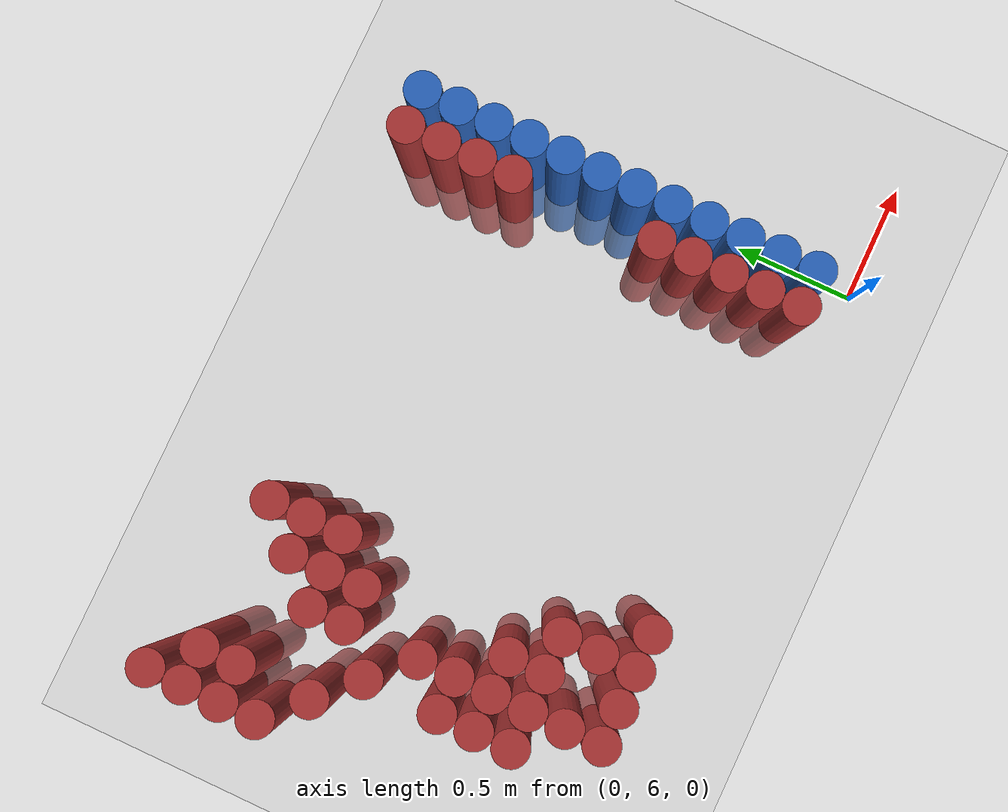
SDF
<sdf version="1.6">
 <world name="default">
  <model name="ground_plane">
   <static>1</static>
   <link name="link">
    <collision name="collision">
     <geometry><plane><normal>0 0 1</normal><size>100 100</size></plane></geometry>
     <surface><friction><ode><mu>100</mu><mu2>50</mu2></ode></friction></surface>
    </collision>
    <visual name="visual">
     <cast_shadows>0</cast_shadows>
     <geometry><plane><normal>0 0 1</normal><size>100 100</size></plane></geometry>
     <material>
      <script><uri>file://media/materials/scripts/gazebo.material</uri><name>Gazebo/Grey</name></script>
     </material>
    </visual>
   </link>
  </model>
  <model name="unit_cylinder_240">
   <static>1</static>
   <pose>-2.475000 7.425000 0.000000 0.000000 0.000000 0.000000</pose>
   <link name="link">
    <inertial>
     <mass>1</mass>
     <inertia><ixx>0.145833</ixx><ixy>0</ixy><ixz>0</ixz><iyy>0.145833</iyy><iyz>0</iyz><izz>0.125</izz></inertia>
    </inertial>
    <collision name="collision">
     <geometry><cylinder><radius>0.075000</radius><length>1</length></cylinder></geometry>
    </collision>
    <visual name="visual">
     <geometry><cylinder><radius>0.075000</radius><length>1</length></cylinder></geometry>
     <material>
      <ambient>0.648000 0.192000 0.192000 1</ambient>
      <diffuse>0.648000 0.192000 0.192000 1</diffuse>
     </material>
     <material>
      <script><name>Gazebo/Grey</name><uri>file://media/materials/scripts/gazebo.material</uri></script>
     </material>
    </visual>
   </link>
  </model>
  <model name="unit_cylinder_241">
   <static>1</static>
   <pose>-2.475000 7.575000 0.000000 0.000000 0.000000 0.000000</pose>
   <link name="link">
    <inertial>
     <mass>1</mass>
     <inertia><ixx>0.145833</ixx><ixy>0</ixy><ixz>0</ixz><iyy>0.145833</iyy><iyz>0</iyz><izz>0.125</izz></inertia>
    </inertial>
    <collision name="collision">
     <geometry><cylinder><radius>0.075000</radius><length>1</length></cylinder></geometry>
    </collision>
    <visual name="visual">
     <geometry><cylinder><radius>0.075000</radius><length>1</length></cylinder></geometry>
     <material>
      <ambient>0.648000 0.192000 0.192000 1</ambient>
      <diffuse>0.648000 0.192000 0.192000 1</diffuse>
     </material>
     <material>
      <script><name>Gazebo/Grey</name><uri>file://media/materials/scripts/gazebo.material</uri></script>
     </material>
    </visual>
   </link>
  </model>
  <model name="unit_cylinder_242">
   <static>1</static>
   <pose>-2.475000 7.725000 0.000000 0.000000 0.000000 0.000000</pose>
   <link name="link">
    <inertial>
     <mass>1</mass>
     <inertia><ixx>0.145833</ixx><ixy>0</ixy><ixz>0</ixz><iyy>0.145833</iyy><iyz>0</iyz><izz>0.125</izz></inertia>
    </inertial>
    <collision name="collision">
     <geometry><cylinder><radius>0.075000</radius><length>1</length></cylinder></geometry>
    </collision>
    <visual name="visual">
     <geometry><cylinder><radius>0.075000</radius><length>1</length></cylinder></geometry>
     <material>
      <ambient>0.648000 0.192000 0.192000 1</ambient>
      <diffuse>0.648000 0.192000 0.192000 1</diffuse>
     </material>
     <material>
      <script><name>Gazebo/Grey</name><uri>file://media/materials/scripts/gazebo.material</uri></script>
     </material>
    </visual>
   </link>
  </model>
  <model name="unit_cylinder_243">
   <static>1</static>
   <pose>-2.475000 7.875000 0.000000 0.000000 0.000000 0.000000</pose>
   <link name="link">
    <inertial>
     <mass>1</mass>
     <inertia><ixx>0.145833</ixx><ixy>0</ixy><ixz>0</ixz><iyy>0.145833</iyy><iyz>0</iyz><izz>0.125</izz></inertia>
    </inertial>
    <collision name="collision">
     <geometry><cylinder><radius>0.075000</radius><length>1</length></cylinder></geometry>
    </collision>
    <visual name="visual">
     <geometry><cylinder><radius>0.075000</radius><length>1</length></cylinder></geometry>
     <material>
      <ambient>0.648000 0.192000 0.192000 1</ambient>
      <diffuse>0.648000 0.192000 0.192000 1</diffuse>
     </material>
     <material>
      <script><name>Gazebo/Grey</name><uri>file://media/materials/scripts/gazebo.material</uri></script>
     </material>
    </visual>
   </link>
  </model>
  <model name="unit_cylinder_254">
   <static>1</static>
   <pose>-2.325000 7.275000 0.000000 0.000000 0.000000 0.000000</pose>
   <link name="link">
    <inertial>
     <mass>1</mass>
     <inertia><ixx>0.145833</ixx><ixy>0</ixy><ixz>0</ixz><iyy>0.145833</iyy><iyz>0</iyz><izz>0.125</izz></inertia>
    </inertial>
    <collision name="collision">
     <geometry><cylinder><radius>0.075000</radius><length>1</length></cylinder></geometry>
    </collision>
    <visual name="visual">
     <geometry><cylinder><radius>0.075000</radius><length>1</length></cylinder></geometry>
     <material>
      <ambient>0.648000 0.192000 0.192000 1</ambient>
      <diffuse>0.648000 0.192000 0.192000 1</diffuse>
     </material>
     <material>
      <script><name>Gazebo/Grey</name><uri>file://media/materials/scripts/gazebo.material</uri></script>
     </material>
    </visual>
   </link>
  </model>
  <model name="unit_cylinder_255">
   <static>1</static>
   <pose>-2.325000 7.575000 0.000000 0.000000 0.000000 0.000000</pose>
   <link name="link">
    <inertial>
     <mass>1</mass>
     <inertia><ixx>0.145833</ixx><ixy>0</ixy><ixz>0</ixz><iyy>0.145833</iyy><iyz>0</iyz><izz>0.125</izz></inertia>
    </inertial>
    <collision name="collision">
     <geometry><cylinder><radius>0.075000</radius><length>1</length></cylinder></geometry>
    </collision>
    <visual name="visual">
     <geometry><cylinder><radius>0.075000</radius><length>1</length></cylinder></geometry>
     <material>
      <ambient>0.648000 0.192000 0.192000 1</ambient>
      <diffuse>0.648000 0.192000 0.192000 1</diffuse>
     </material>
     <material>
      <script><name>Gazebo/Grey</name><uri>file://media/materials/scripts/gazebo.material</uri></script>
     </material>
    </visual>
   </link>
  </model>
  <model name="unit_cylinder_256">
   <static>1</static>
   <pose>-2.325000 7.725000 0.000000 0.000000 0.000000 0.000000</pose>
   <link name="link">
    <inertial>
     <mass>1</mass>
     <inertia><ixx>0.145833</ixx><ixy>0</ixy><ixz>0</ixz><iyy>0.145833</iyy><iyz>0</iyz><izz>0.125</izz></inertia>
    </inertial>
    <collision name="collision">
     <geometry><cylinder><radius>0.075000</radius><length>1</length></cylinder></geometry>
    </collision>
    <visual name="visual">
     <geometry><cylinder><radius>0.075000</radius><length>1</length></cylinder></geometry>
     <material>
      <ambient>0.648000 0.192000 0.192000 1</ambient>
      <diffuse>0.648000 0.192000 0.192000 1</diffuse>
     </material>
     <material>
      <script><name>Gazebo/Grey</name><uri>file://media/materials/scripts/gazebo.material</uri></script>
     </material>
    </visual>
   </link>
  </model>
  <model name="unit_cylinder_261">
   <static>1</static>
   <pose>-2.175000 6.525000 0.000000 0.000000 0.000000 0.000000</pose>
   <link name="link">
    <inertial>
     <mass>1</mass>
     <inertia><ixx>0.145833</ixx><ixy>0</ixy><ixz>0</ixz><iyy>0.145833</iyy><iyz>0</iyz><izz>0.125</izz></inertia>
    </inertial>
    <collision name="collision">
     <geometry><cylinder><radius>0.075000</radius><length>1</length></cylinder></geometry>
    </collision>
    <visual name="visual">
     <geometry><cylinder><radius>0.075000</radius><length>1</length></cylinder></geometry>
     <material>
      <ambient>0.648000 0.192000 0.192000 1</ambient>
      <diffuse>0.648000 0.192000 0.192000 1</diffuse>
     </material>
     <material>
      <script><name>Gazebo/Grey</name><uri>file://media/materials/scripts/gazebo.material</uri></script>
     </material>
    </visual>
   </link>
  </model>
  <model name="unit_cylinder_262">
   <static>1</static>
   <pose>-2.175000 6.675000 0.000000 0.000000 0.000000 0.000000</pose>
   <link name="link">
    <inertial>
     <mass>1</mass>
     <inertia><ixx>0.145833</ixx><ixy>0</ixy><ixz>0</ixz><iyy>0.145833</iyy><iyz>0</iyz><izz>0.125</izz></inertia>
    </inertial>
    <collision name="collision">
     <geometry><cylinder><radius>0.075000</radius><length>1</length></cylinder></geometry>
    </collision>
    <visual name="visual">
     <geometry><cylinder><radius>0.075000</radius><length>1</length></cylinder></geometry>
     <material>
      <ambient>0.648000 0.192000 0.192000 1</ambient>
      <diffuse>0.648000 0.192000 0.192000 1</diffuse>
     </material>
     <material>
      <script><name>Gazebo/Grey</name><uri>file://media/materials/scripts/gazebo.material</uri></script>
     </material>
    </visual>
   </link>
  </model>
  <model name="unit_cylinder_263">
   <static>1</static>
   <pose>-2.175000 6.825000 0.000000 0.000000 0.000000 0.000000</pose>
   <link name="link">
    <inertial>
     <mass>1</mass>
     <inertia><ixx>0.145833</ixx><ixy>0</ixy><ixz>0</ixz><iyy>0.145833</iyy><iyz>0</iyz><izz>0.125</izz></inertia>
    </inertial>
    <collision name="collision">
     <geometry><cylinder><radius>0.075000</radius><length>1</length></cylinder></geometry>
    </collision>
    <visual name="visual">
     <geometry><cylinder><radius>0.075000</radius><length>1</length></cylinder></geometry>
     <material>
      <ambient>0.648000 0.192000 0.192000 1</ambient>
      <diffuse>0.648000 0.192000 0.192000 1</diffuse>
     </material>
     <material>
      <script><name>Gazebo/Grey</name><uri>file://media/materials/scripts/gazebo.material</uri></script>
     </material>
    </visual>
   </link>
  </model>
  <model name="unit_cylinder_264">
   <static>1</static>
   <pose>-2.175000 7.125000 0.000000 0.000000 0.000000 0.000000</pose>
   <link name="link">
    <inertial>
     <mass>1</mass>
     <inertia><ixx>0.145833</ixx><ixy>0</ixy><ixz>0</ixz><iyy>0.145833</iyy><iyz>0</iyz><izz>0.125</izz></inertia>
    </inertial>
    <collision name="collision">
     <geometry><cylinder><radius>0.075000</radius><length>1</length></cylinder></geometry>
    </collision>
    <visual name="visual">
     <geometry><cylinder><radius>0.075000</radius><length>1</length></cylinder></geometry>
     <material>
      <ambient>0.648000 0.192000 0.192000 1</ambient>
      <diffuse>0.648000 0.192000 0.192000 1</diffuse>
     </material>
     <material>
      <script><name>Gazebo/Grey</name><uri>file://media/materials/scripts/gazebo.material</uri></script>
     </material>
    </visual>
   </link>
  </model>
  <model name="unit_cylinder_267">
   <static>1</static>
   <pose>-2.025000 6.225000 0.000000 0.000000 0.000000 0.000000</pose>
   <link name="link">
    <inertial>
     <mass>1</mass>
     <inertia><ixx>0.145833</ixx><ixy>0</ixy><ixz>0</ixz><iyy>0.145833</iyy><iyz>0</iyz><izz>0.125</izz></inertia>
    </inertial>
    <collision name="collision">
     <geometry><cylinder><radius>0.075000</radius><length>1</length></cylinder></geometry>
    </collision>
    <visual name="visual">
     <geometry><cylinder><radius>0.075000</radius><length>1</length></cylinder></geometry>
     <material>
      <ambient>0.648000 0.192000 0.192000 1</ambient>
      <diffuse>0.648000 0.192000 0.192000 1</diffuse>
     </material>
     <material>
      <script><name>Gazebo/Grey</name><uri>file://media/materials/scripts/gazebo.material</uri></script>
     </material>
    </visual>
   </link>
  </model>
  <model name="unit_cylinder_268">
   <static>1</static>
   <pose>-2.025000 6.375000 0.000000 0.000000 0.000000 0.000000</pose>
   <link name="link">
    <inertial>
     <mass>1</mass>
     <inertia><ixx>0.145833</ixx><ixy>0</ixy><ixz>0</ixz><iyy>0.145833</iyy><iyz>0</iyz><izz>0.125</izz></inertia>
    </inertial>
    <collision name="collision">
     <geometry><cylinder><radius>0.075000</radius><length>1</length></cylinder></geometry>
    </collision>
    <visual name="visual">
     <geometry><cylinder><radius>0.075000</radius><length>1</length></cylinder></geometry>
     <material>
      <ambient>0.648000 0.192000 0.192000 1</ambient>
      <diffuse>0.648000 0.192000 0.192000 1</diffuse>
     </material>
     <material>
      <script><name>Gazebo/Grey</name><uri>file://media/materials/scripts/gazebo.material</uri></script>
     </material>
    </visual>
   </link>
  </model>
  <model name="unit_cylinder_269">
   <static>1</static>
   <pose>-2.025000 6.525000 0.000000 0.000000 0.000000 0.000000</pose>
   <link name="link">
    <inertial>
     <mass>1</mass>
     <inertia><ixx>0.145833</ixx><ixy>0</ixy><ixz>0</ixz><iyy>0.145833</iyy><iyz>0</iyz><izz>0.125</izz></inertia>
    </inertial>
    <collision name="collision">
     <geometry><cylinder><radius>0.075000</radius><length>1</length></cylinder></geometry>
    </collision>
    <visual name="visual">
     <geometry><cylinder><radius>0.075000</radius><length>1</length></cylinder></geometry>
     <material>
      <ambient>0.648000 0.192000 0.192000 1</ambient>
      <diffuse>0.648000 0.192000 0.192000 1</diffuse>
     </material>
     <material>
      <script><name>Gazebo/Grey</name><uri>file://media/materials/scripts/gazebo.material</uri></script>
     </material>
    </visual>
   </link>
  </model>
  <model name="unit_cylinder_270">
   <static>1</static>
   <pose>-2.025000 6.675000 0.000000 0.000000 0.000000 0.000000</pose>
   <link name="link">
    <inertial>
     <mass>1</mass>
     <inertia><ixx>0.145833</ixx><ixy>0</ixy><ixz>0</ixz><iyy>0.145833</iyy><iyz>0</iyz><izz>0.125</izz></inertia>
    </inertial>
    <collision name="collision">
     <geometry><cylinder><radius>0.075000</radius><length>1</length></cylinder></geometry>
    </collision>
    <visual name="visual">
     <geometry><cylinder><radius>0.075000</radius><length>1</length></cylinder></geometry>
     <material>
      <ambient>0.648000 0.192000 0.192000 1</ambient>
      <diffuse>0.648000 0.192000 0.192000 1</diffuse>
     </material>
     <material>
      <script><name>Gazebo/Grey</name><uri>file://media/materials/scripts/gazebo.material</uri></script>
     </material>
    </visual>
   </link>
  </model>
  <model name="unit_cylinder_271">
   <static>1</static>
   <pose>-2.025000 6.825000 0.000000 0.000000 0.000000 0.000000</pose>
   <link name="link">
    <inertial>
     <mass>1</mass>
     <inertia><ixx>0.145833</ixx><ixy>0</ixy><ixz>0</ixz><iyy>0.145833</iyy><iyz>0</iyz><izz>0.125</izz></inertia>
    </inertial>
    <collision name="collision">
     <geometry><cylinder><radius>0.075000</radius><length>1</length></cylinder></geometry>
    </collision>
    <visual name="visual">
     <geometry><cylinder><radius>0.075000</radius><length>1</length></cylinder></geometry>
     <material>
      <ambient>0.648000 0.192000 0.192000 1</ambient>
      <diffuse>0.648000 0.192000 0.192000 1</diffuse>
     </material>
     <material>
      <script><name>Gazebo/Grey</name><uri>file://media/materials/scripts/gazebo.material</uri></script>
     </material>
    </visual>
   </link>
  </model>
  <model name="unit_cylinder_272">
   <static>1</static>
   <pose>-2.025000 6.975000 0.000000 0.000000 0.000000 0.000000</pose>
   <link name="link">
    <inertial>
     <mass>1</mass>
     <inertia><ixx>0.145833</ixx><ixy>0</ixy><ixz>0</ixz><iyy>0.145833</iyy><iyz>0</iyz><izz>0.125</izz></inertia>
    </inertial>
    <collision name="collision">
     <geometry><cylinder><radius>0.075000</radius><length>1</length></cylinder></geometry>
    </collision>
    <visual name="visual">
     <geometry><cylinder><radius>0.075000</radius><length>1</length></cylinder></geometry>
     <material>
      <ambient>0.648000 0.192000 0.192000 1</ambient>
      <diffuse>0.648000 0.192000 0.192000 1</diffuse>
     </material>
     <material>
      <script><name>Gazebo/Grey</name><uri>file://media/materials/scripts/gazebo.material</uri></script>
     </material>
    </visual>
   </link>
  </model>
  <model name="unit_cylinder_273">
   <static>1</static>
   <pose>-2.025000 7.275000 0.000000 0.000000 0.000000 0.000000</pose>
   <link name="link">
    <inertial>
     <mass>1</mass>
     <inertia><ixx>0.145833</ixx><ixy>0</ixy><ixz>0</ixz><iyy>0.145833</iyy><iyz>0</iyz><izz>0.125</izz></inertia>
    </inertial>
    <collision name="collision">
     <geometry><cylinder><radius>0.075000</radius><length>1</length></cylinder></geometry>
    </collision>
    <visual name="visual">
     <geometry><cylinder><radius>0.075000</radius><length>1</length></cylinder></geometry>
     <material>
      <ambient>0.648000 0.192000 0.192000 1</ambient>
      <diffuse>0.648000 0.192000 0.192000 1</diffuse>
     </material>
     <material>
      <script><name>Gazebo/Grey</name><uri>file://media/materials/scripts/gazebo.material</uri></script>
     </material>
    </visual>
   </link>
  </model>
  <model name="unit_cylinder_274">
   <static>1</static>
   <pose>-2.025000 7.425000 0.000000 0.000000 0.000000 0.000000</pose>
   <link name="link">
    <inertial>
     <mass>1</mass>
     <inertia><ixx>0.145833</ixx><ixy>0</ixy><ixz>0</ixz><iyy>0.145833</iyy><iyz>0</iyz><izz>0.125</izz></inertia>
    </inertial>
    <collision name="collision">
     <geometry><cylinder><radius>0.075000</radius><length>1</length></cylinder></geometry>
    </collision>
    <visual name="visual">
     <geometry><cylinder><radius>0.075000</radius><length>1</length></cylinder></geometry>
     <material>
      <ambient>0.648000 0.192000 0.192000 1</ambient>
      <diffuse>0.648000 0.192000 0.192000 1</diffuse>
     </material>
     <material>
      <script><name>Gazebo/Grey</name><uri>file://media/materials/scripts/gazebo.material</uri></script>
     </material>
    </visual>
   </link>
  </model>
  <model name="unit_cylinder_280">
   <static>1</static>
   <pose>-1.875000 6.225000 0.000000 0.000000 0.000000 0.000000</pose>
   <link name="link">
    <inertial>
     <mass>1</mass>
     <inertia><ixx>0.145833</ixx><ixy>0</ixy><ixz>0</ixz><iyy>0.145833</iyy><iyz>0</iyz><izz>0.125</izz></inertia>
    </inertial>
    <collision name="collision">
     <geometry><cylinder><radius>0.075000</radius><length>1</length></cylinder></geometry>
    </collision>
    <visual name="visual">
     <geometry><cylinder><radius>0.075000</radius><length>1</length></cylinder></geometry>
     <material>
      <ambient>0.648000 0.192000 0.192000 1</ambient>
      <diffuse>0.648000 0.192000 0.192000 1</diffuse>
     </material>
     <material>
      <script><name>Gazebo/Grey</name><uri>file://media/materials/scripts/gazebo.material</uri></script>
     </material>
    </visual>
   </link>
  </model>
  <model name="unit_cylinder_281">
   <static>1</static>
   <pose>-1.875000 6.525000 0.000000 0.000000 0.000000 0.000000</pose>
   <link name="link">
    <inertial>
     <mass>1</mass>
     <inertia><ixx>0.145833</ixx><ixy>0</ixy><ixz>0</ixz><iyy>0.145833</iyy><iyz>0</iyz><izz>0.125</izz></inertia>
    </inertial>
    <collision name="collision">
     <geometry><cylinder><radius>0.075000</radius><length>1</length></cylinder></geometry>
    </collision>
    <visual name="visual">
     <geometry><cylinder><radius>0.075000</radius><length>1</length></cylinder></geometry>
     <material>
      <ambient>0.648000 0.192000 0.192000 1</ambient>
      <diffuse>0.648000 0.192000 0.192000 1</diffuse>
     </material>
     <material>
      <script><name>Gazebo/Grey</name><uri>file://media/materials/scripts/gazebo.material</uri></script>
     </material>
    </visual>
   </link>
  </model>
  <model name="unit_cylinder_282">
   <static>1</static>
   <pose>-1.875000 6.675000 0.000000 0.000000 0.000000 0.000000</pose>
   <link name="link">
    <inertial>
     <mass>1</mass>
     <inertia><ixx>0.145833</ixx><ixy>0</ixy><ixz>0</ixz><iyy>0.145833</iyy><iyz>0</iyz><izz>0.125</izz></inertia>
    </inertial>
    <collision name="collision">
     <geometry><cylinder><radius>0.075000</radius><length>1</length></cylinder></geometry>
    </collision>
    <visual name="visual">
     <geometry><cylinder><radius>0.075000</radius><length>1</length></cylinder></geometry>
     <material>
      <ambient>0.648000 0.192000 0.192000 1</ambient>
      <diffuse>0.648000 0.192000 0.192000 1</diffuse>
     </material>
     <material>
      <script><name>Gazebo/Grey</name><uri>file://media/materials/scripts/gazebo.material</uri></script>
     </material>
    </visual>
   </link>
  </model>
  <model name="unit_cylinder_283">
   <static>1</static>
   <pose>-1.875000 7.275000 0.000000 0.000000 0.000000 0.000000</pose>
   <link name="link">
    <inertial>
     <mass>1</mass>
     <inertia><ixx>0.145833</ixx><ixy>0</ixy><ixz>0</ixz><iyy>0.145833</iyy><iyz>0</iyz><izz>0.125</izz></inertia>
    </inertial>
    <collision name="collision">
     <geometry><cylinder><radius>0.075000</radius><length>1</length></cylinder></geometry>
    </collision>
    <visual name="visual">
     <geometry><cylinder><radius>0.075000</radius><length>1</length></cylinder></geometry>
     <material>
      <ambient>0.648000 0.192000 0.192000 1</ambient>
      <diffuse>0.648000 0.192000 0.192000 1</diffuse>
     </material>
     <material>
      <script><name>Gazebo/Grey</name><uri>file://media/materials/scripts/gazebo.material</uri></script>
     </material>
    </visual>
   </link>
  </model>
  <model name="unit_cylinder_284">
   <static>1</static>
   <pose>-1.875000 7.425000 0.000000 0.000000 0.000000 0.000000</pose>
   <link name="link">
    <inertial>
     <mass>1</mass>
     <inertia><ixx>0.145833</ixx><ixy>0</ixy><ixz>0</ixz><iyy>0.145833</iyy><iyz>0</iyz><izz>0.125</izz></inertia>
    </inertial>
    <collision name="collision">
     <geometry><cylinder><radius>0.075000</radius><length>1</length></cylinder></geometry>
    </collision>
    <visual name="visual">
     <geometry><cylinder><radius>0.075000</radius><length>1</length></cylinder></geometry>
     <material>
      <ambient>0.648000 0.192000 0.192000 1</ambient>
      <diffuse>0.648000 0.192000 0.192000 1</diffuse>
     </material>
     <material>
      <script><name>Gazebo/Grey</name><uri>file://media/materials/scripts/gazebo.material</uri></script>
     </material>
    </visual>
   </link>
  </model>
  <model name="unit_cylinder_285">
   <static>1</static>
   <pose>-1.875000 7.575000 0.000000 0.000000 0.000000 0.000000</pose>
   <link name="link">
    <inertial>
     <mass>1</mass>
     <inertia><ixx>0.145833</ixx><ixy>0</ixy><ixz>0</ixz><iyy>0.145833</iyy><iyz>0</iyz><izz>0.125</izz></inertia>
    </inertial>
    <collision name="collision">
     <geometry><cylinder><radius>0.075000</radius><length>1</length></cylinder></geometry>
    </collision>
    <visual name="visual">
     <geometry><cylinder><radius>0.075000</radius><length>1</length></cylinder></geometry>
     <material>
      <ambient>0.648000 0.192000 0.192000 1</ambient>
      <diffuse>0.648000 0.192000 0.192000 1</diffuse>
     </material>
     <material>
      <script><name>Gazebo/Grey</name><uri>file://media/materials/scripts/gazebo.material</uri></script>
     </material>
    </visual>
   </link>
  </model>
  <model name="unit_cylinder_289">
   <static>1</static>
   <pose>-1.725000 6.225000 0.000000 0.000000 0.000000 0.000000</pose>
   <link name="link">
    <inertial>
     <mass>1</mass>
     <inertia><ixx>0.145833</ixx><ixy>0</ixy><ixz>0</ixz><iyy>0.145833</iyy><iyz>0</iyz><izz>0.125</izz></inertia>
    </inertial>
    <collision name="collision">
     <geometry><cylinder><radius>0.075000</radius><length>1</length></cylinder></geometry>
    </collision>
    <visual name="visual">
     <geometry><cylinder><radius>0.075000</radius><length>1</length></cylinder></geometry>
     <material>
      <ambient>0.648000 0.192000 0.192000 1</ambient>
      <diffuse>0.648000 0.192000 0.192000 1</diffuse>
     </material>
     <material>
      <script><name>Gazebo/Grey</name><uri>file://media/materials/scripts/gazebo.material</uri></script>
     </material>
    </visual>
   </link>
  </model>
  <model name="unit_cylinder_290">
   <static>1</static>
   <pose>-1.725000 6.375000 0.000000 0.000000 0.000000 0.000000</pose>
   <link name="link">
    <inertial>
     <mass>1</mass>
     <inertia><ixx>0.145833</ixx><ixy>0</ixy><ixz>0</ixz><iyy>0.145833</iyy><iyz>0</iyz><izz>0.125</izz></inertia>
    </inertial>
    <collision name="collision">
     <geometry><cylinder><radius>0.075000</radius><length>1</length></cylinder></geometry>
    </collision>
    <visual name="visual">
     <geometry><cylinder><radius>0.075000</radius><length>1</length></cylinder></geometry>
     <material>
      <ambient>0.648000 0.192000 0.192000 1</ambient>
      <diffuse>0.648000 0.192000 0.192000 1</diffuse>
     </material>
     <material>
      <script><name>Gazebo/Grey</name><uri>file://media/materials/scripts/gazebo.material</uri></script>
     </material>
    </visual>
   </link>
  </model>
  <model name="unit_cylinder_291">
   <static>1</static>
   <pose>-1.725000 6.525000 0.000000 0.000000 0.000000 0.000000</pose>
   <link name="link">
    <inertial>
     <mass>1</mass>
     <inertia><ixx>0.145833</ixx><ixy>0</ixy><ixz>0</ixz><iyy>0.145833</iyy><iyz>0</iyz><izz>0.125</izz></inertia>
    </inertial>
    <collision name="collision">
     <geometry><cylinder><radius>0.075000</radius><length>1</length></cylinder></geometry>
    </collision>
    <visual name="visual">
     <geometry><cylinder><radius>0.075000</radius><length>1</length></cylinder></geometry>
     <material>
      <ambient>0.648000 0.192000 0.192000 1</ambient>
      <diffuse>0.648000 0.192000 0.192000 1</diffuse>
     </material>
     <material>
      <script><name>Gazebo/Grey</name><uri>file://media/materials/scripts/gazebo.material</uri></script>
     </material>
    </visual>
   </link>
  </model>
  <model name="unit_cylinder_292">
   <static>1</static>
   <pose>-1.725000 7.425000 0.000000 0.000000 0.000000 0.000000</pose>
   <link name="link">
    <inertial>
     <mass>1</mass>
     <inertia><ixx>0.145833</ixx><ixy>0</ixy><ixz>0</ixz><iyy>0.145833</iyy><iyz>0</iyz><izz>0.125</izz></inertia>
    </inertial>
    <collision name="collision">
     <geometry><cylinder><radius>0.075000</radius><length>1</length></cylinder></geometry>
    </collision>
    <visual name="visual">
     <geometry><cylinder><radius>0.075000</radius><length>1</length></cylinder></geometry>
     <material>
      <ambient>0.648000 0.192000 0.192000 1</ambient>
      <diffuse>0.648000 0.192000 0.192000 1</diffuse>
     </material>
     <material>
      <script><name>Gazebo/Grey</name><uri>file://media/materials/scripts/gazebo.material</uri></script>
     </material>
    </visual>
   </link>
  </model>
  <model name="unit_cylinder_293">
   <static>1</static>
   <pose>-1.725000 7.575000 0.000000 0.000000 0.000000 0.000000</pose>
   <link name="link">
    <inertial>
     <mass>1</mass>
     <inertia><ixx>0.145833</ixx><ixy>0</ixy><ixz>0</ixz><iyy>0.145833</iyy><iyz>0</iyz><izz>0.125</izz></inertia>
    </inertial>
    <collision name="collision">
     <geometry><cylinder><radius>0.075000</radius><length>1</length></cylinder></geometry>
    </collision>
    <visual name="visual">
     <geometry><cylinder><radius>0.075000</radius><length>1</length></cylinder></geometry>
     <material>
      <ambient>0.648000 0.192000 0.192000 1</ambient>
      <diffuse>0.648000 0.192000 0.192000 1</diffuse>
     </material>
     <material>
      <script><name>Gazebo/Grey</name><uri>file://media/materials/scripts/gazebo.material</uri></script>
     </material>
    </visual>
   </link>
  </model>
  <model name="unit_cylinder_294">
   <static>1</static>
   <pose>-1.725000 7.725000 0.000000 0.000000 0.000000 0.000000</pose>
   <link name="link">
    <inertial>
     <mass>1</mass>
     <inertia><ixx>0.145833</ixx><ixy>0</ixy><ixz>0</ixz><iyy>0.145833</iyy><iyz>0</iyz><izz>0.125</izz></inertia>
    </inertial>
    <collision name="collision">
     <geometry><cylinder><radius>0.075000</radius><length>1</length></cylinder></geometry>
    </collision>
    <visual name="visual">
     <geometry><cylinder><radius>0.075000</radius><length>1</length></cylinder></geometry>
     <material>
      <ambient>0.648000 0.192000 0.192000 1</ambient>
      <diffuse>0.648000 0.192000 0.192000 1</diffuse>
     </material>
     <material>
      <script><name>Gazebo/Grey</name><uri>file://media/materials/scripts/gazebo.material</uri></script>
     </material>
    </visual>
   </link>
  </model>
  <model name="unit_cylinder_303">
   <static>1</static>
   <pose>-1.575000 6.225000 0.000000 0.000000 0.000000 0.000000</pose>
   <link name="link">
    <inertial>
     <mass>1</mass>
     <inertia><ixx>0.145833</ixx><ixy>0</ixy><ixz>0</ixz><iyy>0.145833</iyy><iyz>0</iyz><izz>0.125</izz></inertia>
    </inertial>
    <collision name="collision">
     <geometry><cylinder><radius>0.075000</radius><length>1</length></cylinder></geometry>
    </collision>
    <visual name="visual">
     <geometry><cylinder><radius>0.075000</radius><length>1</length></cylinder></geometry>
     <material>
      <ambient>0.648000 0.192000 0.192000 1</ambient>
      <diffuse>0.648000 0.192000 0.192000 1</diffuse>
     </material>
     <material>
      <script><name>Gazebo/Grey</name><uri>file://media/materials/scripts/gazebo.material</uri></script>
     </material>
    </visual>
   </link>
  </model>
  <model name="unit_cylinder_327">
   <static>1</static>
   <pose>-0.225000 6.225000 0.000000 0.000000 0.000000 0.000000</pose>
   <link name="link">
    <inertial>
     <mass>1</mass>
     <inertia><ixx>0.145833</ixx><ixy>0</ixy><ixz>0</ixz><iyy>0.145833</iyy><iyz>0</iyz><izz>0.125</izz></inertia>
    </inertial>
    <collision name="collision">
     <geometry><cylinder><radius>0.075000</radius><length>1</length></cylinder></geometry>
    </collision>
    <visual name="visual">
     <geometry><cylinder><radius>0.075000</radius><length>1</length></cylinder></geometry>
     <material>
      <ambient>0.648000 0.192000 0.192000 1</ambient>
      <diffuse>0.648000 0.192000 0.192000 1</diffuse>
     </material>
     <material>
      <script><name>Gazebo/Grey</name><uri>file://media/materials/scripts/gazebo.material</uri></script>
     </material>
    </visual>
   </link>
  </model>
  <model name="unit_cylinder_328">
   <static>1</static>
   <pose>-0.225000 6.375000 0.000000 0.000000 0.000000 0.000000</pose>
   <link name="link">
    <inertial>
     <mass>1</mass>
     <inertia><ixx>0.145833</ixx><ixy>0</ixy><ixz>0</ixz><iyy>0.145833</iyy><iyz>0</iyz><izz>0.125</izz></inertia>
    </inertial>
    <collision name="collision">
     <geometry><cylinder><radius>0.075000</radius><length>1</length></cylinder></geometry>
    </collision>
    <visual name="visual">
     <geometry><cylinder><radius>0.075000</radius><length>1</length></cylinder></geometry>
     <material>
      <ambient>0.648000 0.192000 0.192000 1</ambient>
      <diffuse>0.648000 0.192000 0.192000 1</diffuse>
     </material>
     <material>
      <script><name>Gazebo/Grey</name><uri>file://media/materials/scripts/gazebo.material</uri></script>
     </material>
    </visual>
   </link>
  </model>
  <model name="unit_cylinder_329">
   <static>1</static>
   <pose>-0.225000 6.525000 0.000000 0.000000 0.000000 0.000000</pose>
   <link name="link">
    <inertial>
     <mass>1</mass>
     <inertia><ixx>0.145833</ixx><ixy>0</ixy><ixz>0</ixz><iyy>0.145833</iyy><iyz>0</iyz><izz>0.125</izz></inertia>
    </inertial>
    <collision name="collision">
     <geometry><cylinder><radius>0.075000</radius><length>1</length></cylinder></geometry>
    </collision>
    <visual name="visual">
     <geometry><cylinder><radius>0.075000</radius><length>1</length></cylinder></geometry>
     <material>
      <ambient>0.648000 0.192000 0.192000 1</ambient>
      <diffuse>0.648000 0.192000 0.192000 1</diffuse>
     </material>
     <material>
      <script><name>Gazebo/Grey</name><uri>file://media/materials/scripts/gazebo.material</uri></script>
     </material>
    </visual>
   </link>
  </model>
  <model name="unit_cylinder_330">
   <static>1</static>
   <pose>-0.225000 6.675000 0.000000 0.000000 0.000000 0.000000</pose>
   <link name="link">
    <inertial>
     <mass>1</mass>
     <inertia><ixx>0.145833</ixx><ixy>0</ixy><ixz>0</ixz><iyy>0.145833</iyy><iyz>0</iyz><izz>0.125</izz></inertia>
    </inertial>
    <collision name="collision">
     <geometry><cylinder><radius>0.075000</radius><length>1</length></cylinder></geometry>
    </collision>
    <visual name="visual">
     <geometry><cylinder><radius>0.075000</radius><length>1</length></cylinder></geometry>
     <material>
      <ambient>0.648000 0.192000 0.192000 1</ambient>
      <diffuse>0.648000 0.192000 0.192000 1</diffuse>
     </material>
     <material>
      <script><name>Gazebo/Grey</name><uri>file://media/materials/scripts/gazebo.material</uri></script>
     </material>
    </visual>
   </link>
  </model>
  <model name="unit_cylinder_331">
   <static>1</static>
   <pose>-0.225000 6.825000 0.000000 0.000000 0.000000 0.000000</pose>
   <link name="link">
    <inertial>
     <mass>1</mass>
     <inertia><ixx>0.145833</ixx><ixy>0</ixy><ixz>0</ixz><iyy>0.145833</iyy><iyz>0</iyz><izz>0.125</izz></inertia>
    </inertial>
    <collision name="collision">
     <geometry><cylinder><radius>0.075000</radius><length>1</length></cylinder></geometry>
    </collision>
    <visual name="visual">
     <geometry><cylinder><radius>0.075000</radius><length>1</length></cylinder></geometry>
     <material>
      <ambient>0.648000 0.192000 0.192000 1</ambient>
      <diffuse>0.648000 0.192000 0.192000 1</diffuse>
     </material>
     <material>
      <script><name>Gazebo/Grey</name><uri>file://media/materials/scripts/gazebo.material</uri></script>
     </material>
    </visual>
   </link>
  </model>
  <model name="unit_cylinder_332">
   <static>1</static>
   <pose>-0.225000 7.425000 0.000000 0.000000 0.000000 0.000000</pose>
   <link name="link">
    <inertial>
     <mass>1</mass>
     <inertia><ixx>0.145833</ixx><ixy>0</ixy><ixz>0</ixz><iyy>0.145833</iyy><iyz>0</iyz><izz>0.125</izz></inertia>
    </inertial>
    <collision name="collision">
     <geometry><cylinder><radius>0.075000</radius><length>1</length></cylinder></geometry>
    </collision>
    <visual name="visual">
     <geometry><cylinder><radius>0.075000</radius><length>1</length></cylinder></geometry>
     <material>
      <ambient>0.648000 0.192000 0.192000 1</ambient>
      <diffuse>0.648000 0.192000 0.192000 1</diffuse>
     </material>
     <material>
      <script><name>Gazebo/Grey</name><uri>file://media/materials/scripts/gazebo.material</uri></script>
     </material>
    </visual>
   </link>
  </model>
  <model name="unit_cylinder_333">
   <static>1</static>
   <pose>-0.225000 7.575000 0.000000 0.000000 0.000000 0.000000</pose>
   <link name="link">
    <inertial>
     <mass>1</mass>
     <inertia><ixx>0.145833</ixx><ixy>0</ixy><ixz>0</ixz><iyy>0.145833</iyy><iyz>0</iyz><izz>0.125</izz></inertia>
    </inertial>
    <collision name="collision">
     <geometry><cylinder><radius>0.075000</radius><length>1</length></cylinder></geometry>
    </collision>
    <visual name="visual">
     <geometry><cylinder><radius>0.075000</radius><length>1</length></cylinder></geometry>
     <material>
      <ambient>0.648000 0.192000 0.192000 1</ambient>
      <diffuse>0.648000 0.192000 0.192000 1</diffuse>
     </material>
     <material>
      <script><name>Gazebo/Grey</name><uri>file://media/materials/scripts/gazebo.material</uri></script>
     </material>
    </visual>
   </link>
  </model>
  <model name="unit_cylinder_334">
   <static>1</static>
   <pose>-0.225000 7.725000 0.000000 0.000000 0.000000 0.000000</pose>
   <link name="link">
    <inertial>
     <mass>1</mass>
     <inertia><ixx>0.145833</ixx><ixy>0</ixy><ixz>0</ixz><iyy>0.145833</iyy><iyz>0</iyz><izz>0.125</izz></inertia>
    </inertial>
    <collision name="collision">
     <geometry><cylinder><radius>0.075000</radius><length>1</length></cylinder></geometry>
    </collision>
    <visual name="visual">
     <geometry><cylinder><radius>0.075000</radius><length>1</length></cylinder></geometry>
     <material>
      <ambient>0.648000 0.192000 0.192000 1</ambient>
      <diffuse>0.648000 0.192000 0.192000 1</diffuse>
     </material>
     <material>
      <script><name>Gazebo/Grey</name><uri>file://media/materials/scripts/gazebo.material</uri></script>
     </material>
    </visual>
   </link>
  </model>
  <model name="unit_cylinder_335">
   <static>1</static>
   <pose>-0.225000 7.875000 0.000000 0.000000 0.000000 0.000000</pose>
   <link name="link">
    <inertial>
     <mass>1</mass>
     <inertia><ixx>0.145833</ixx><ixy>0</ixy><ixz>0</ixz><iyy>0.145833</iyy><iyz>0</iyz><izz>0.125</izz></inertia>
    </inertial>
    <collision name="collision">
     <geometry><cylinder><radius>0.075000</radius><length>1</length></cylinder></geometry>
    </collision>
    <visual name="visual">
     <geometry><cylinder><radius>0.075000</radius><length>1</length></cylinder></geometry>
     <material>
      <ambient>0.648000 0.192000 0.192000 1</ambient>
      <diffuse>0.648000 0.192000 0.192000 1</diffuse>
     </material>
     <material>
      <script><name>Gazebo/Grey</name><uri>file://media/materials/scripts/gazebo.material</uri></script>
     </material>
    </visual>
   </link>
  </model>
  <model name="unit_cylinder_346">
   <static>1</static>
   <pose>-0.075000 6.225000 0.000000 0.000000 0.000000 0.000000</pose>
   <link name="link">
    <inertial>
     <mass>1</mass>
     <inertia><ixx>0.145833</ixx><ixy>0</ixy><ixz>0</ixz><iyy>0.145833</iyy><iyz>0</iyz><izz>0.125</izz></inertia>
    </inertial>
    <collision name="collision">
     <geometry><cylinder><radius>0.075000</radius><length>1</length></cylinder></geometry>
    </collision>
    <visual name="visual">
     <geometry><cylinder><radius>0.075000</radius><length>1</length></cylinder></geometry>
     <material>
      <ambient>0.152000 0.379000 0.720000 1</ambient>
      <diffuse>0.152000 0.379000 0.720000 1</diffuse>
     </material>
     <material>
      <script><name>Gazebo/Grey</name><uri>file://media/materials/scripts/gazebo.material</uri></script>
     </material>
    </visual>
   </link>
  </model>
  <model name="unit_cylinder_347">
   <static>1</static>
   <pose>-0.075000 6.375000 0.000000 0.000000 0.000000 0.000000</pose>
   <link name="link">
    <inertial>
     <mass>1</mass>
     <inertia><ixx>0.145833</ixx><ixy>0</ixy><ixz>0</ixz><iyy>0.145833</iyy><iyz>0</iyz><izz>0.125</izz></inertia>
    </inertial>
    <collision name="collision">
     <geometry><cylinder><radius>0.075000</radius><length>1</length></cylinder></geometry>
    </collision>
    <visual name="visual">
     <geometry><cylinder><radius>0.075000</radius><length>1</length></cylinder></geometry>
     <material>
      <ambient>0.152000 0.379000 0.720000 1</ambient>
      <diffuse>0.152000 0.379000 0.720000 1</diffuse>
     </material>
     <material>
      <script><name>Gazebo/Grey</name><uri>file://media/materials/scripts/gazebo.material</uri></script>
     </material>
    </visual>
   </link>
  </model>
  <model name="unit_cylinder_348">
   <static>1</static>
   <pose>-0.075000 6.525000 0.000000 0.000000 0.000000 0.000000</pose>
   <link name="link">
    <inertial>
     <mass>1</mass>
     <inertia><ixx>0.145833</ixx><ixy>0</ixy><ixz>0</ixz><iyy>0.145833</iyy><iyz>0</iyz><izz>0.125</izz></inertia>
    </inertial>
    <collision name="collision">
     <geometry><cylinder><radius>0.075000</radius><length>1</length></cylinder></geometry>
    </collision>
    <visual name="visual">
     <geometry><cylinder><radius>0.075000</radius><length>1</length></cylinder></geometry>
     <material>
      <ambient>0.152000 0.379000 0.720000 1</ambient>
      <diffuse>0.152000 0.379000 0.720000 1</diffuse>
     </material>
     <material>
      <script><name>Gazebo/Grey</name><uri>file://media/materials/scripts/gazebo.material</uri></script>
     </material>
    </visual>
   </link>
  </model>
  <model name="unit_cylinder_349">
   <static>1</static>
   <pose>-0.075000 6.675000 0.000000 0.000000 0.000000 0.000000</pose>
   <link name="link">
    <inertial>
     <mass>1</mass>
     <inertia><ixx>0.145833</ixx><ixy>0</ixy><ixz>0</ixz><iyy>0.145833</iyy><iyz>0</iyz><izz>0.125</izz></inertia>
    </inertial>
    <collision name="collision">
     <geometry><cylinder><radius>0.075000</radius><length>1</length></cylinder></geometry>
    </collision>
    <visual name="visual">
     <geometry><cylinder><radius>0.075000</radius><length>1</length></cylinder></geometry>
     <material>
      <ambient>0.152000 0.379000 0.720000 1</ambient>
      <diffuse>0.152000 0.379000 0.720000 1</diffuse>
     </material>
     <material>
      <script><name>Gazebo/Grey</name><uri>file://media/materials/scripts/gazebo.material</uri></script>
     </material>
    </visual>
   </link>
  </model>
  <model name="unit_cylinder_350">
   <static>1</static>
   <pose>-0.075000 6.825000 0.000000 0.000000 0.000000 0.000000</pose>
   <link name="link">
    <inertial>
     <mass>1</mass>
     <inertia><ixx>0.145833</ixx><ixy>0</ixy><ixz>0</ixz><iyy>0.145833</iyy><iyz>0</iyz><izz>0.125</izz></inertia>
    </inertial>
    <collision name="collision">
     <geometry><cylinder><radius>0.075000</radius><length>1</length></cylinder></geometry>
    </collision>
    <visual name="visual">
     <geometry><cylinder><radius>0.075000</radius><length>1</length></cylinder></geometry>
     <material>
      <ambient>0.152000 0.379000 0.720000 1</ambient>
      <diffuse>0.152000 0.379000 0.720000 1</diffuse>
     </material>
     <material>
      <script><name>Gazebo/Grey</name><uri>file://media/materials/scripts/gazebo.material</uri></script>
     </material>
    </visual>
   </link>
  </model>
  <model name="unit_cylinder_351">
   <static>1</static>
   <pose>-0.075000 6.975000 0.000000 0.000000 0.000000 0.000000</pose>
   <link name="link">
    <inertial>
     <mass>1</mass>
     <inertia><ixx>0.145833</ixx><ixy>0</ixy><ixz>0</ixz><iyy>0.145833</iyy><iyz>0</iyz><izz>0.125</izz></inertia>
    </inertial>
    <collision name="collision">
     <geometry><cylinder><radius>0.075000</radius><length>1</length></cylinder></geometry>
    </collision>
    <visual name="visual">
     <geometry><cylinder><radius>0.075000</radius><length>1</length></cylinder></geometry>
     <material>
      <ambient>0.152000 0.379000 0.720000 1</ambient>
      <diffuse>0.152000 0.379000 0.720000 1</diffuse>
     </material>
     <material>
      <script><name>Gazebo/Grey</name><uri>file://media/materials/scripts/gazebo.material</uri></script>
     </material>
    </visual>
   </link>
  </model>
  <model name="unit_cylinder_352">
   <static>1</static>
   <pose>-0.075000 7.125000 0.000000 0.000000 0.000000 0.000000</pose>
   <link name="link">
    <inertial>
     <mass>1</mass>
     <inertia><ixx>0.145833</ixx><ixy>0</ixy><ixz>0</ixz><iyy>0.145833</iyy><iyz>0</iyz><izz>0.125</izz></inertia>
    </inertial>
    <collision name="collision">
     <geometry><cylinder><radius>0.075000</radius><length>1</length></cylinder></geometry>
    </collision>
    <visual name="visual">
     <geometry><cylinder><radius>0.075000</radius><length>1</length></cylinder></geometry>
     <material>
      <ambient>0.152000 0.379000 0.720000 1</ambient>
      <diffuse>0.152000 0.379000 0.720000 1</diffuse>
     </material>
     <material>
      <script><name>Gazebo/Grey</name><uri>file://media/materials/scripts/gazebo.material</uri></script>
     </material>
    </visual>
   </link>
  </model>
  <model name="unit_cylinder_353">
   <static>1</static>
   <pose>-0.075000 7.275000 0.000000 0.000000 0.000000 0.000000</pose>
   <link name="link">
    <inertial>
     <mass>1</mass>
     <inertia><ixx>0.145833</ixx><ixy>0</ixy><ixz>0</ixz><iyy>0.145833</iyy><iyz>0</iyz><izz>0.125</izz></inertia>
    </inertial>
    <collision name="collision">
     <geometry><cylinder><radius>0.075000</radius><length>1</length></cylinder></geometry>
    </collision>
    <visual name="visual">
     <geometry><cylinder><radius>0.075000</radius><length>1</length></cylinder></geometry>
     <material>
      <ambient>0.152000 0.379000 0.720000 1</ambient>
      <diffuse>0.152000 0.379000 0.720000 1</diffuse>
     </material>
     <material>
      <script><name>Gazebo/Grey</name><uri>file://media/materials/scripts/gazebo.material</uri></script>
     </material>
    </visual>
   </link>
  </model>
  <model name="unit_cylinder_354">
   <static>1</static>
   <pose>-0.075000 7.425000 0.000000 0.000000 0.000000 0.000000</pose>
   <link name="link">
    <inertial>
     <mass>1</mass>
     <inertia><ixx>0.145833</ixx><ixy>0</ixy><ixz>0</ixz><iyy>0.145833</iyy><iyz>0</iyz><izz>0.125</izz></inertia>
    </inertial>
    <collision name="collision">
     <geometry><cylinder><radius>0.075000</radius><length>1</length></cylinder></geometry>
    </collision>
    <visual name="visual">
     <geometry><cylinder><radius>0.075000</radius><length>1</length></cylinder></geometry>
     <material>
      <ambient>0.152000 0.379000 0.720000 1</ambient>
      <diffuse>0.152000 0.379000 0.720000 1</diffuse>
     </material>
     <material>
      <script><name>Gazebo/Grey</name><uri>file://media/materials/scripts/gazebo.material</uri></script>
     </material>
    </visual>
   </link>
  </model>
  <model name="unit_cylinder_355">
   <static>1</static>
   <pose>-0.075000 7.575000 0.000000 0.000000 0.000000 0.000000</pose>
   <link name="link">
    <inertial>
     <mass>1</mass>
     <inertia><ixx>0.145833</ixx><ixy>0</ixy><ixz>0</ixz><iyy>0.145833</iyy><iyz>0</iyz><izz>0.125</izz></inertia>
    </inertial>
    <collision name="collision">
     <geometry><cylinder><radius>0.075000</radius><length>1</length></cylinder></geometry>
    </collision>
    <visual name="visual">
     <geometry><cylinder><radius>0.075000</radius><length>1</length></cylinder></geometry>
     <material>
      <ambient>0.152000 0.379000 0.720000 1</ambient>
      <diffuse>0.152000 0.379000 0.720000 1</diffuse>
     </material>
     <material>
      <script><name>Gazebo/Grey</name><uri>file://media/materials/scripts/gazebo.material</uri></script>
     </material>
    </visual>
   </link>
  </model>
  <model name="unit_cylinder_356">
   <static>1</static>
   <pose>-0.075000 7.725000 0.000000 0.000000 0.000000 0.000000</pose>
   <link name="link">
    <inertial>
     <mass>1</mass>
     <inertia><ixx>0.145833</ixx><ixy>0</ixy><ixz>0</ixz><iyy>0.145833</iyy><iyz>0</iyz><izz>0.125</izz></inertia>
    </inertial>
    <collision name="collision">
     <geometry><cylinder><radius>0.075000</radius><length>1</length></cylinder></geometry>
    </collision>
    <visual name="visual">
     <geometry><cylinder><radius>0.075000</radius><length>1</length></cylinder></geometry>
     <material>
      <ambient>0.152000 0.379000 0.720000 1</ambient>
      <diffuse>0.152000 0.379000 0.720000 1</diffuse>
     </material>
     <material>
      <script><name>Gazebo/Grey</name><uri>file://media/materials/scripts/gazebo.material</uri></script>
     </material>
    </visual>
   </link>
  </model>
  <model name="unit_cylinder_357">
   <static>1</static>
   <pose>-0.075000 7.875000 0.000000 0.000000 0.000000 0.000000</pose>
   <link name="link">
    <inertial>
     <mass>1</mass>
     <inertia><ixx>0.145833</ixx><ixy>0</ixy><ixz>0</ixz><iyy>0.145833</iyy><iyz>0</iyz><izz>0.125</izz></inertia>
    </inertial>
    <collision name="collision">
     <geometry><cylinder><radius>0.075000</radius><length>1</length></cylinder></geometry>
    </collision>
    <visual name="visual">
     <geometry><cylinder><radius>0.075000</radius><length>1</length></cylinder></geometry>
     <material>
      <ambient>0.152000 0.379000 0.720000 1</ambient>
      <diffuse>0.152000 0.379000 0.720000 1</diffuse>
     </material>
     <material>
      <script><name>Gazebo/Grey</name><uri>file://media/materials/scripts/gazebo.material</uri></script>
     </material>
    </visual>
   </link>
  </model>
 </world>
</sdf>
